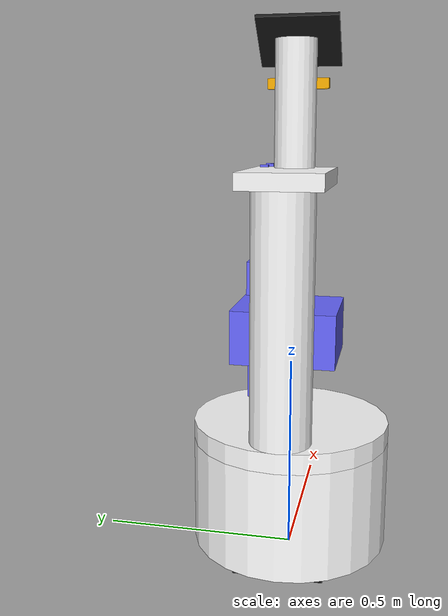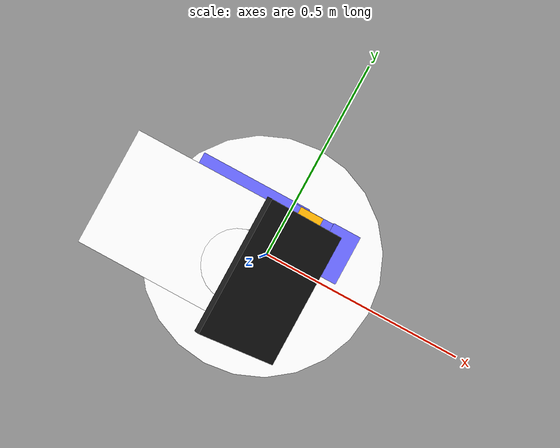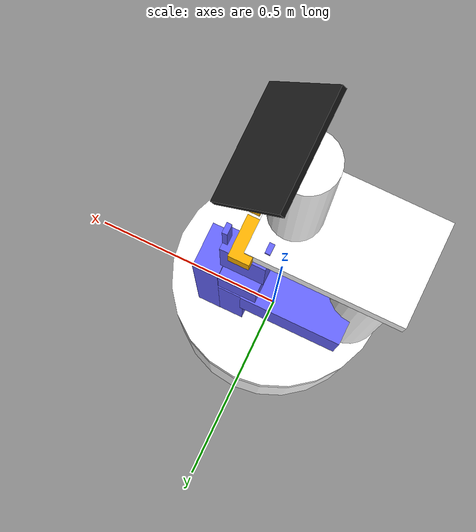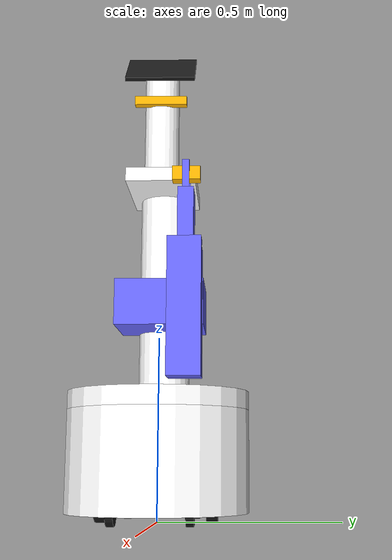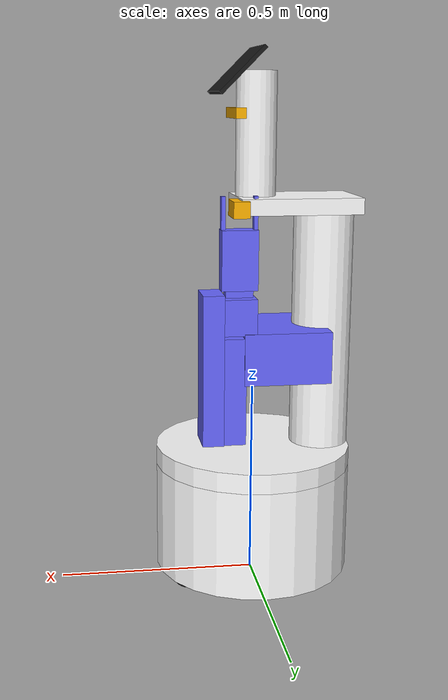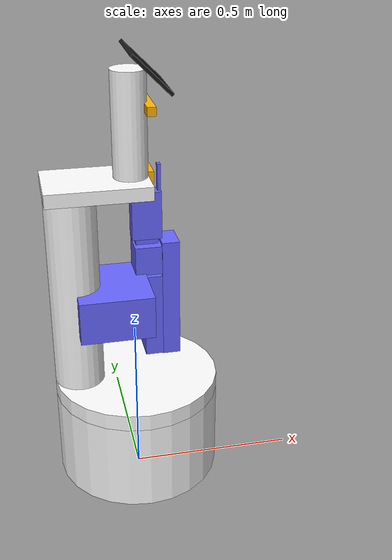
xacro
<?xml version="1.0" ?>
<robot xmlns:xacro="http://www.ros.org/wiki/xacro" name="korus">
  <include filename="$(find korus_meta)/resources/urdf/korus_robosem_base_back_mount.xacro"/>
  <include filename="$(find korus_meta)/resources/urdf/korus_arm.xacro"/>

  <!-- ************************ Robot model ************************* -->
  <xacro:korus_robosem_base_back_mount arm_link="torso_lift_link">
  </xacro:korus_robosem_base_back_mount>

  <!-- ************************ Arm model ************************* -->
	<xacro:korus_arm parent="torso_lift_link">
	</xacro:korus_arm>
</robot>

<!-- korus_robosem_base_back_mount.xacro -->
<robot xmlns:xacro="http://www.ros.org/wiki/xacro">

	  <!-- ************************ Properties ************************** -->
	  <xacro:property name="pi" value="3.1415926535897931" />
	  <xacro:property name="material_white">
	    <material name="white">
	      <color rgba="1 1 1 1"/>
	    </material>
	  </xacro:property>
	  <xacro:property name="material_orange">
	    <material name="orange">
	      <color rgba="1.0 0.7 0.0 1"/>
	    </material>
	  </xacro:property>
	  <xacro:property name="material_red">
	    <material name="red">
	      <color rgba="1.0 0.0 0.0 1"/>
	    </material>
	  </xacro:property>
	  <xacro:property name="material_grey_blue">
	    <material name="grey_blue">
	      <color rgba="0.4 0.4 1.0 1"/>
	    </material>
	  </xacro:property>
	  <xacro:property name="material_blue">
	    <material name="blue">
	      <color rgba="0.0 0.0 1.0 1"/>
	    </material>
	  </xacro:property>
	  <xacro:property name="material_green">
	    <material name="green">
	      <color rgba="0 .8 0 1"/>
	    </material>
	  </xacro:property>
	  <xacro:property name="material_grey">
	    <material name="grey">
	      <color rgba="0.7 0.7 0.7 1.0"/>
	    </material>
	  </xacro:property>
	  <xacro:property name="material_black">
	    <material name="black">
	      <color rgba="0.1 0.1 0.1 1"/>
	    </material>
	  </xacro:property>
    <xacro:property name="wheel_bias" value="0.3" />
    <xacro:property name="wheel_radius" value="0.075" />
    <xacro:property name="caster_wheel_bias" value="0.2" />
    <xacro:property name="caster_wheel_radius" value="0.040" />

    <!-- ************************** Wheel macro ************************** -->
	  <xacro:macro name="wheel" params="name length radius off_x off_y off_z type">
	    <link name="${name}">
	      <visual>
	        <geometry>
	          <cylinder length="${length}" radius="${radius}"/>
	        </geometry>
	        <origin rpy="0 ${pi/2} 0" xyz="0 0 0"/>
	        <material name="black">
	          <color rgba="0.1 0.1 0.1 1"/>
	        </material>
	      </visual>
	    </link>
	    <joint name="${name}" type="${type}">
	      <parent link="base_link"/>
	      <child link="${name}"/>
	      <origin rpy="0 0 ${pi/2}" xyz="${off_x} ${off_y} ${off_z}"/>
	    </joint>
	  </xacro:macro>

    <!-- ************************** Robot macro ************************** -->
    <xacro:macro name="korus_robosem_base_back_mount" params="arm_link">

		  <!-- ************************** Base *************************** -->
		  <link name="base_footprint"></link>
		  <joint name="base_joint" type="fixed">
		    <parent link="base_footprint"/>
		    <child link="base_link"/>
		    <origin rpy="0 0 0" xyz="0.0 0.0 0.075"/>
		  </joint>
		  <link name="base_link">
		    <visual>
		      <origin rpy="0 0 0" xyz="0.0 0 0.0875"/>
		       <geometry>
		        <cylinder length="0.275" radius="0.250"/>
		      </geometry>
		      <xacro:insert_block name="material_white" />
		    </visual>
		  </link>
		  <xacro:wheel name="wheel_left" length="0.03" radius="${wheel_radius}" off_x="0.0" off_y="${wheel_bias/2}" off_z="0.0" type="continuous"/>
		  <xacro:wheel name="wheel_right" length="0.03" radius="${wheel_radius}" off_x="0.0" off_y="-${wheel_bias/2}" off_z="0.0" type="continuous"/>
		  <xacro:wheel name="caster_front_left" length="0.02" radius="${caster_wheel_radius}" off_x="0.18" off_y="${caster_wheel_bias/2}" off_z="-0.035" type="fixed"/>
		  <xacro:wheel name="caster_front_right" length="0.02" radius="${caster_wheel_radius}" off_x="0.18" off_y="-${caster_wheel_bias/2}" off_z="-0.035" type="fixed"/>
		  <xacro:wheel name="caster_back_left" length="0.02" radius="${caster_wheel_radius}" off_x="-0.18" off_y="${caster_wheel_bias/2}" off_z="-0.035" type="fixed"/>
		  <xacro:wheel name="caster_back_right" length="0.02" radius="${caster_wheel_radius}" off_x="-0.18" off_y="-${caster_wheel_bias/2}" off_z="-0.035" type="fixed"/>

		  <!-- ************************** Body ************************** -->

		  <joint name="body" type="revolute">
		    <parent link="base_link"/>
		    <child link="body_link"/>
		    <origin rpy="0 0 0" xyz="0.0 0.0 0.250"/>
		    <axis xyz="0 0 1"/>
		    <limit effort="10" lower="-${pi}" upper="${pi}" velocity="0.013"/>
		  </joint>
		  <link name="body_link">
		    <visual>
		      <origin rpy="0 0 0" xyz="0.0 0.0 0.0"/>
		       <geometry>
		        <cylinder length="0.05" radius="0.25"/>
		      </geometry>
		      <xacro:insert_block name="material_white" />
		    </visual>
		  </link>

		  <!-- ************************** Torso *************************** -->
		  <joint name="torso_joint" type="fixed">
		    <parent link="body_link"/>
		    <child link="torso_link"/>
		    <origin xyz="-0.175 0.0 0.025" rpy="0 0 0"/>
		  </joint>
		  <link name="torso_link">
		    <visual>
		      <geometry>
		        <cylinder length="0.60" radius="0.075"/>
		      </geometry>
		      <origin rpy="0 0 0" xyz="0 0 0.3"/>
		      <xacro:insert_block name="material_white" />
		    </visual>
		  </link>

		  <joint name="torso_lift_offset" type="fixed">
		    <parent link="torso_link"/>
		    <child link="torso_lift_offset_link"/>
		    <origin xyz="0 0 0.25" rpy="0 0 0"/>
		    <axis xyz="0 0 1"/>
		  </joint>
		  <link name="torso_lift_offset_link"></link>

		  <joint name="torso_lift" type="prismatic">
		    <parent link="torso_lift_offset_link"/>
		    <child link="${arm_link}"/>
		    <origin xyz="0 0 0" rpy="0 0 ${pi}"/>
		    <axis xyz="0 0 1"/>
		    <limit effort="10" lower="-0.08" upper="0.08" velocity="0.5"/>
		  </joint>
		  <link name="${arm_link}">
		  </link>

		  <!-- ************************** Neck ************************** -->
		  <joint name="neck_joint" type="fixed">
		    <parent link="torso_link"/>
		    <child link="neck_link"/>
		    <origin rpy="0 0 0" xyz="0  0.0 0.60"/>
		  </joint>
		  <link name="neck_link">
		    <visual>
		      <geometry>
		        <box size="0.300 0.20 0.04" />
		      </geometry>
		      <origin xyz="0.075 0.0 0.02" rpy="0 0 0" />
		      <xacro:insert_block name="material_white"/>
		    </visual>
		  </link>

	  <!-- ************************** Head ************************** -->
	  <joint name="head_joint" type="revolute">
	    <parent link="neck_link"/>
	    <child link="head_link"/>
	    <origin rpy="0 0 0" xyz="0.175 0 0.04"/>
	    <axis xyz="0 0 1"/>
	    <limit effort="10" lower="-${pi/2}" upper="${pi/2}" velocity="0.013"/>
	  </joint>
	  <link name="head_link">
	    <visual>
	      <geometry>
	        <cylinder length="0.30" radius="0.05"/>
	      </geometry>
	      <origin rpy="0 0 0" xyz="0.0 0.0 0.15"/>
	      <xacro:insert_block name="material_white" />
	    </visual>
	  </link>

	  <!-- *********************** Asus Xtion ************************ -->
	  <joint name="asus_tilt_joint" type="revolute">
	    <parent link="head_link"/>
	    <child link="asus_link"/>
	    <origin rpy="0 0 -${pi/2}" xyz="0.05 0.0 0.20"/>
	    <axis xyz="1 0 0"/>
	    <limit effort="10" lower="-${pi/2}" upper="${pi/2}" velocity="0.013"/>
	  </joint>
	  <link name="asus_link">
	    <visual>
	      <geometry>
	        <box size="0.025 0.15 0.025" />
	      </geometry>
	      <origin rpy="0 0 ${-pi/2}" xyz="0.0 0.0 0.0"/>
	      <xacro:insert_block name="material_orange" />
	    </visual>
	  </link>

	  <!-- ************************ Tablet ************************* -->
	  <joint name="tablet_joint" type="fixed">
	    <parent link="head_link"/>
	    <child link="tablet_link"/>
	    <origin rpy="0 0 0" xyz="0.05 0.0 0.30"/>
	  </joint>
	  <link name="tablet_link">
	    <visual>
	      <geometry>
	        <box size="0.01 0.20 0.15" />
	      </geometry>
	      <origin rpy="0.0 -${pi/4} 0.0" xyz="0.0 0.0 0.0"/>
	      <xacro:insert_block name="material_black" />
	    </visual>
	  </link>
  </xacro:macro>
</robot>

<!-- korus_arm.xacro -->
<robot xmlns:xacro="http://www.ros.org/wiki/xacro">

    <!-- ************************ Properties ************************* -->
    <xacro:property name="pi" value="3.1415926535897931" />
    <xacro:property name="material_white">
      <material name="white">
        <color rgba="1 1 1 1"/>
      </material>
    </xacro:property>
    <xacro:property name="material_orange">
      <material name="orange">
        <color rgba="1.0 0.7 0.0 1"/>
      </material>
    </xacro:property>
    <xacro:property name="material_red">
      <material name="red">
        <color rgba="1.0 0.0 0.0 1"/>
      </material>
    </xacro:property>
    <xacro:property name="material_grey_blue">
      <material name="grey_blue">
        <color rgba="0.4 0.4 1.0 1"/>
      </material>
    </xacro:property>
    <xacro:property name="material_blue">
      <material name="blue">
        <color rgba="0.0 0.0 1.0 1"/>
      </material>
    </xacro:property>
    <xacro:property name="material_green">
      <material name="green">
        <color rgba="0 .8 0 1"/>
      </material>
    </xacro:property>
    <xacro:property name="material_grey">
      <material name="grey">
        <color rgba="0.7 0.7 0.7 1.0"/>
      </material>
    </xacro:property>
    <xacro:property name="material_black">
      <material name="black">
        <color rgba="0.1 0.1 0.1 1"/>
      </material>
    </xacro:property>

  <!-- ************************ Arm macro ************************* -->
  <xacro:macro name="korus_arm" params="parent">
    <joint name="arm_mount_joint" type="fixed">
      <parent link="${parent}"/>
      <child link="arm_mount_link"/>
      <origin xyz="0 0 0" rpy="0 0 0"/>
    </joint>
    <link name="arm_mount_link">
      <visual>
        <geometry>
          <box size="0.2185 0.25 0.13"/>
        </geometry>
        <origin xyz="-0.10925 0.0 0.0" rpy="0 0 0"/>
        <xacro:insert_block name="material_grey_blue" />
      </visual>
    </link>

    <joint name="shoulder_roll" type="revolute">
	    <parent link="arm_mount_link"/>
	    <child link="shoulder_roll_link"/>
	    <origin xyz="-0.241 -0.076 0" rpy="${pi} ${pi/2} 0.0"/>
	    <axis xyz="0 1 0"/>
	    <limit effort="10" lower="-${pi}" upper="${pi}" velocity="0.5"/>
	  </joint>
	  <link name="shoulder_roll_link">
	  </link>

	  <joint name="shoulder_pitch" type="revolute">
	    <parent link="shoulder_roll_link"/>
	    <child link="shoulder_pitch_link"/>
	    <origin xyz="0.0 0.0 0.0" rpy="0.0 0.0 0.0"/>
	    <axis xyz="0 0 1"/>
	    <limit effort="10" lower="-${pi}" upper="${pi}" velocity="0.013"/>
	  </joint>
	  <link name="shoulder_pitch_link">
	    <visual>
	      <geometry>
	        <box size="0.270 0.093 0.055"/>
	      </geometry>
	      <origin xyz="0.081 0.0 0.0" rpy="0 0 0"/>
	      <xacro:insert_block name="material_grey_blue" />
	    </visual>
	  </link>

	  <joint name="elbow_pitch" type="revolute">
	    <parent link="shoulder_pitch_link"/>
	    <child link="elbow_pitch_link"/>
	    <origin xyz="0.162 0.0 0.045" rpy="0 0 3.141592"/>
	    <axis xyz="0 0 1"/>
	    <limit effort="10" lower="-${pi}" upper="${pi}" velocity="0.013"/>
	  </joint>
	  <link name="elbow_pitch_link">
	    <visual>
	      <geometry>
	        <box size="0.380 0.093 0.053"/>
	      </geometry>
	      <origin xyz="0.134 0.00 0.009" rpy="0 0 0"/>
	      <xacro:insert_block name="material_grey_blue" />
	    </visual>
	  </link>

	  <joint name="wrist_pitch" type="revolute">
	    <parent link="elbow_pitch_link"/>
	    <child link="wrist_pitch_link"/>
	    <origin xyz="0.268 0.0 -0.058" rpy="0 0 0"/>
	    <axis xyz="0 0 1"/>
	    <limit effort="10" lower="-1.7453" upper="1.7453" velocity="0.5"/>
	  </joint>
	  <link name="wrist_pitch_link">
	    <visual>
	      <geometry>
	        <box size="0.09 0.09 0.081"/>
	      </geometry>
	      <origin xyz="0.0 0.0 0.0" rpy="0 0 0"/>
	      <xacro:insert_block name="material_grey_blue" />
	    </visual>
	  </link>

	  <joint name="wrist_roll" type="revolute">
	    <parent link="wrist_pitch_link"/>
	    <child link="wrist_roll_link"/>
	    <origin xyz="0.045 0 0" rpy="0 ${pi/2} 0.0"/>
	    <axis xyz="0 0 1"/>
	    <limit effort="10" lower="-${pi}" upper="${pi}" velocity="0.013"/>
	  </joint>
	  <link name="wrist_roll_link">
	    <visual>
	      <geometry>
	        <box size="0.068 0.034 0.068"/>
	      </geometry>
	      <origin xyz="0.0 0.0 0.034" rpy="0 0 0"/>
	      <xacro:insert_block name="material_grey_blue" />
	    </visual>
	  </link>

	  <joint name="wrist_yaw" type="revolute">
	    <parent link="wrist_roll_link"/>
	    <child link="wrist_yaw_link"/>
	    <origin xyz="0 0 0.034" rpy="${pi/2} -${pi/2} 0.0"/>
	    <axis xyz="0 0 1"/>
	    <limit effort="10" lower="-1.6232" upper="1.6232" velocity="0.5"/>
	  </joint>
	  <link name="wrist_yaw_link">
	      <visual>
	      <geometry>
	        <box size="0.148 0.09 0.045"/>
	      </geometry>
	      <origin xyz="0.057 0.0 0.0" rpy="0 0 0"/>
	      <xacro:insert_block name="material_grey_blue" />
	    </visual>
	  </link>

	<!--   Endeffector (gripper)  -->
	  <joint name="gripper_palm" type="fixed">
	    <parent link="wrist_yaw_link"/>
	    <child link="gripper_palm_link"/>
	    <origin xyz="0.131 0 0" rpy="0.0 0.0 0.0"/>
	    <axis xyz="0 0 1"/>
	    <limit effort="10" lower="-1.6232" upper="1.6232" velocity="0.5"/>
	  </joint>
	  <link name="gripper_palm_link">
	  </link>

	  <!-- center of the volume covered by the fingers -->
	  <joint name="gripper_center" type="fixed">
	    <parent link="wrist_yaw_link"/>
	    <child link="gripper_center_link"/>
	    <origin xyz="0.181 0 0" rpy="0 0 0"/>
	  </joint>
	  <link name="gripper_center_link">
	    <visual>
	      <geometry>
	        <box size="0.04 0.04 0.08"/>
	      </geometry>
	      <origin xyz="0.0 0.0 0.0" rpy="0 0 0"/>
	      <xacro:insert_block name="material_orange" />
	    </visual>
	  </link>

	  <joint name="gripper_left_finger_joint" type="prismatic">
	    <parent link="wrist_yaw_link"/>
	    <child link="gripper_left_finger_tip_link"/>
	    <origin xyz="0.131 -0.04 0.0" rpy="0.0 0.0 0.0"/>
	    <axis xyz="0 1 0"/>
	    <limit effort="10" lower="0.0" upper="0.04" velocity="0.5"/>
	  </joint>
	  <link name="gripper_left_finger_tip_link">
	      <visual>
	      <geometry>
	        <box size="0.08 0.02 0.01"/>
	      </geometry>
	      <origin xyz="0.04 0.0 0.0" rpy="${pi/2} 0 0"/>
	      <xacro:insert_block name="material_grey_blue" />
	    </visual>
	  </link>

	  <joint name="gripper_right_finger_joint" type="prismatic">
	    <parent link="wrist_yaw_link"/>
	    <child link="gripper_right_finger_tip_link"/>
	    <origin xyz="0.131 0.04 0.0" rpy="${pi} 0.0 0.0"/>
	    <axis xyz="0 1 0"/>
	    <limit effort="10" lower="0.0" upper="0.04" velocity="0.5"/>
	  </joint>
	  <link name="gripper_right_finger_tip_link">
	      <visual>
	      <geometry>
	        <box size="0.08 0.02 0.01"/>
	      </geometry>
	      <origin xyz="0.04 0.0 0.0" rpy="${pi/2} 0 0"/>
	      <xacro:insert_block name="material_grey_blue" />
	    </visual>
	  </link>
  </xacro:macro>
</robot>
